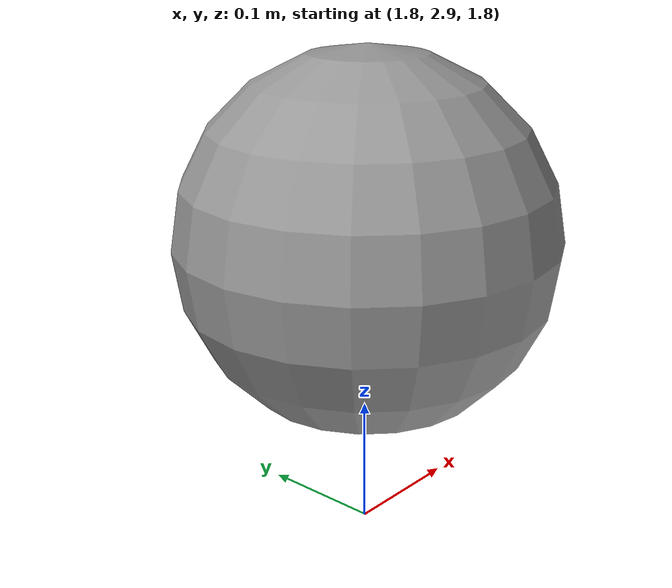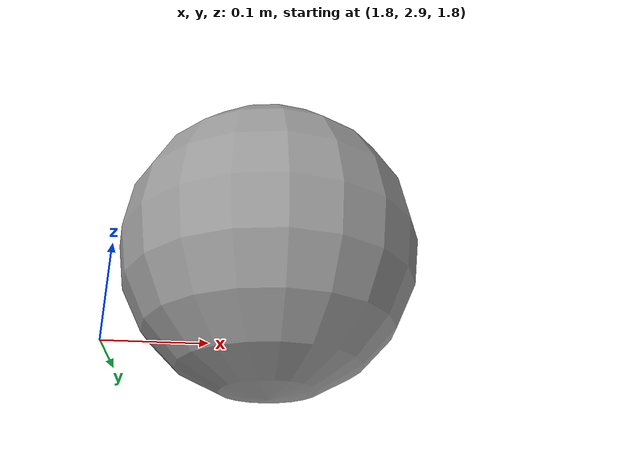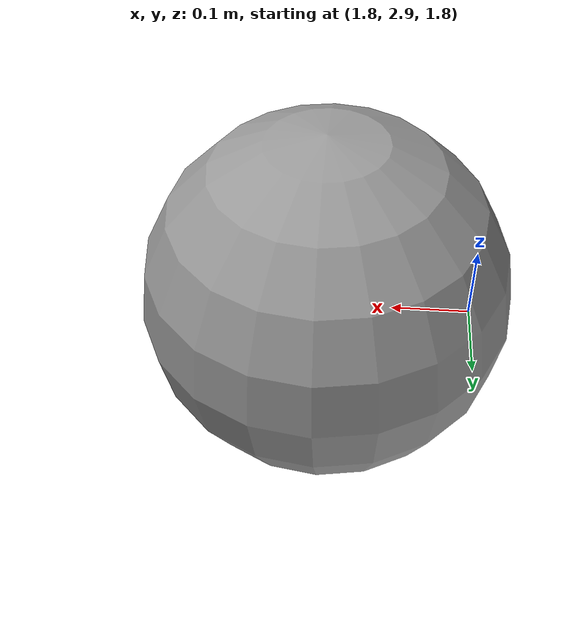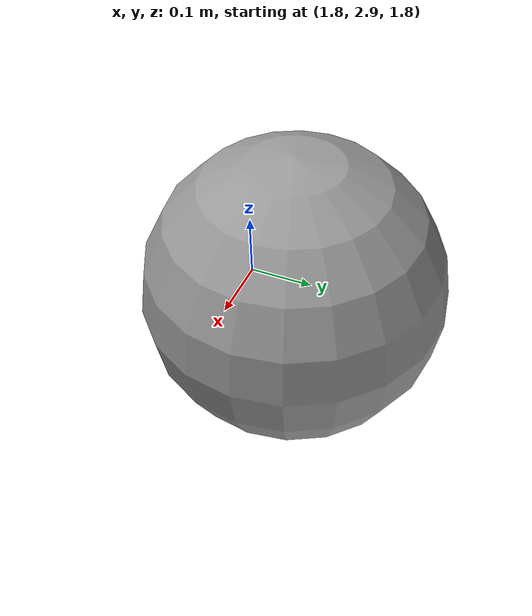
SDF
<?xml version="1.0" ?>
<sdf version="1.6">
    <model name='unit_sphere'>
      <pose frame=''>1.97334 3.04378 1.96831 0 -0 0</pose>
      <link name='unit_sphere::link'>
        <inertial>
          <mass>1</mass>
          <inertia>
            <ixx>0.1</ixx>
            <ixy>0</ixy>
            <ixz>0</ixz>
            <iyy>0.1</iyy>
            <iyz>0</iyz>
            <izz>0.1</izz>
          </inertia>
          <pose frame=''>0 0 0 0 -0 0</pose>
        </inertial>
        <collision name='collision'>
          <geometry>
            <sphere>
              <radius>0.19</radius>
            </sphere>
          </geometry>
          <max_contacts>50</max_contacts>
          <surface>
            <contact>
              <ode/>
            </contact>
            <bounce/>
            <friction>
              <torsional>
                <ode/>
              </torsional>
              <ode/>
            </friction>
          </surface>
        </collision>
        <visual name='visual'>
          <geometry>
            <sphere>
              <radius>0.19</radius>
            </sphere>
          </geometry>
          <material>
            <script>
              <name>Gazebo/Grey</name>
              <uri>file://media/materials/scripts/gazebo.material</uri>
            </script>
          </material>
        </visual>
        <self_collide>0</self_collide>
        <enable_wind>0</enable_wind>
        <kinematic>0</kinematic>
      </link>
    </model>
</sdf>
